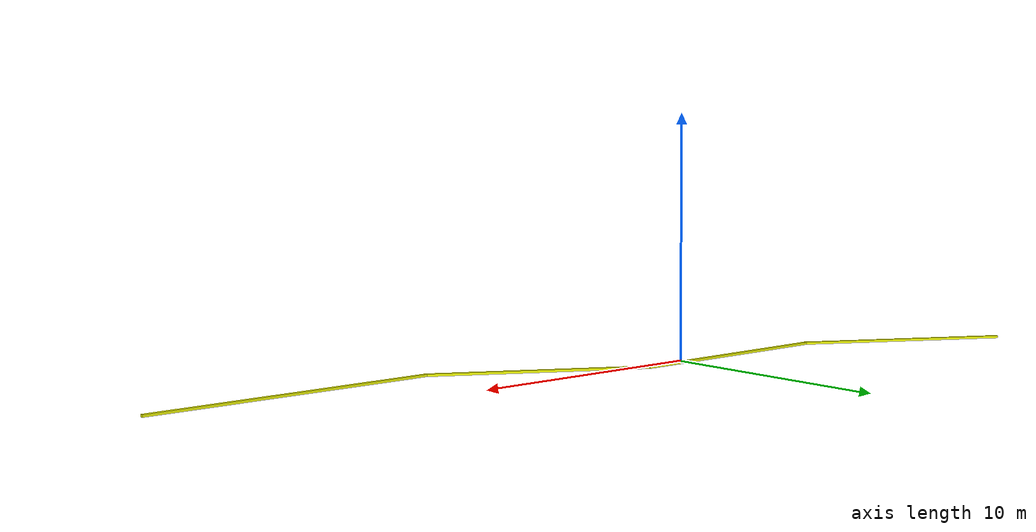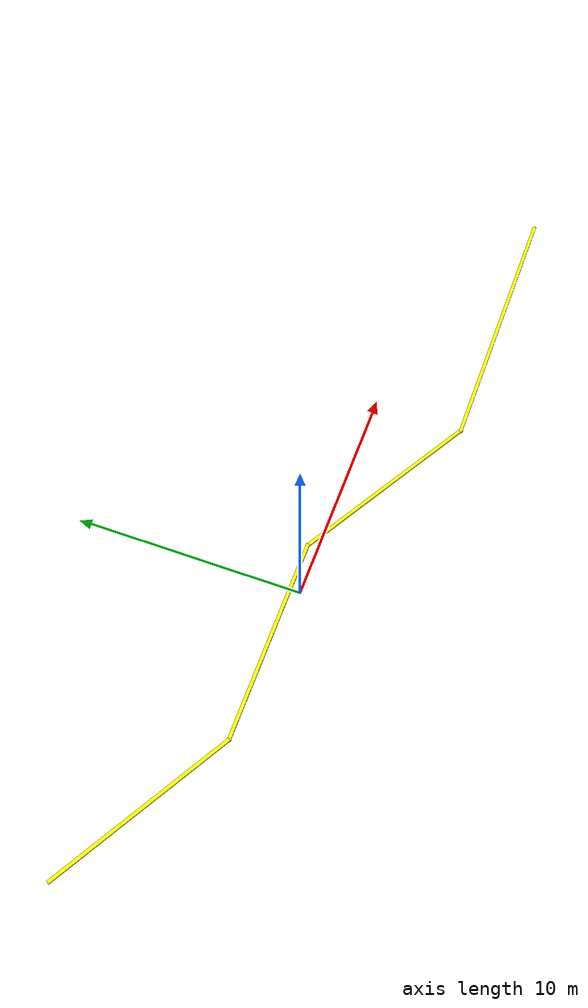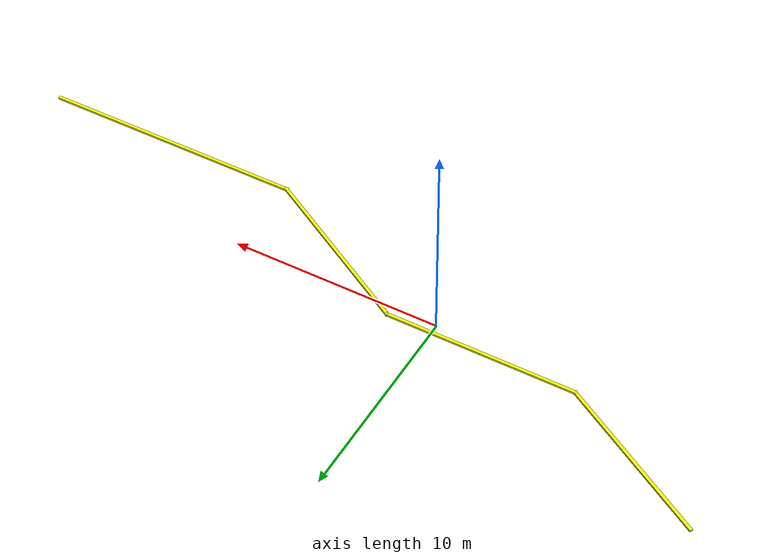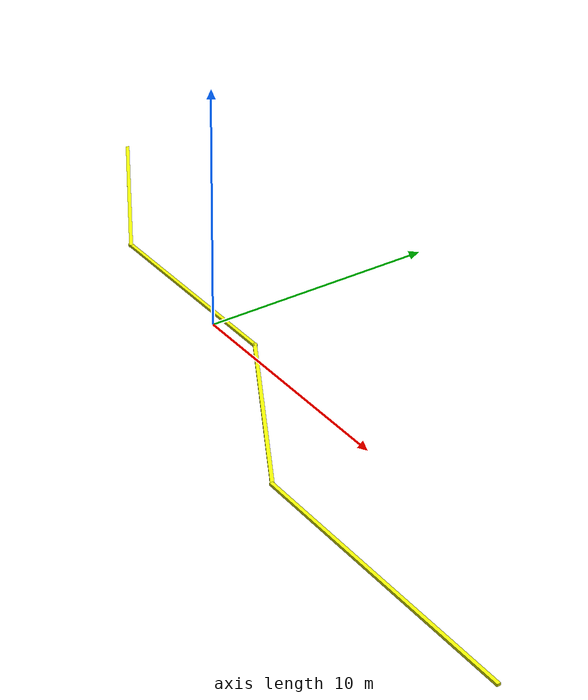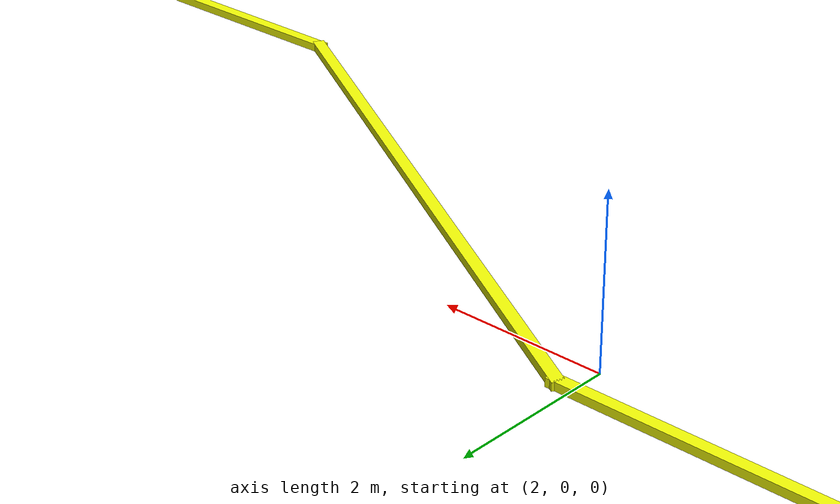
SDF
<?xml version='1.0'?>
<sdf version='1.7'>
  <model name='line3'>
    <pose>3.76931 0.405445 0 0 -0 0</pose>
    <link name='Wall_3'>
      <collision name='Wall_3_Collision'>
        <geometry>
          <box>
            <size>8.75 0.15 0.1</size>
          </box>
        </geometry>
        <pose>0 0 0.05 0 -0 0</pose>
      </collision>
      <visual name='Wall_3_Visual'>
        <pose>0 0 0.05 0 -0 0</pose>
        <geometry>
          <box>
            <size>8.75 0.15 0.1</size>
          </box>
        </geometry>
        <material>
          <script>
            <uri>file://media/materials/scripts/gazebo.material</uri>
            <name>Gazebo/Grey</name>
          </script>
          <ambient>0.945098 0.980392 0.0196078 1</ambient>
        </material>
        <meta>
          <layer>0</layer>
        </meta>
      </visual>
      <pose>-14.4183 2.21256 0 0 -0 -0.523588</pose>
    </link>
    <link name='Wall_4'>
      <collision name='Wall_4_Collision'>
        <geometry>
          <box>
            <size>9.25 0.15 0.1</size>
          </box>
        </geometry>
        <pose>0 0 0.05 0 -0 0</pose>
      </collision>
      <visual name='Wall_4_Visual'>
        <pose>0 0 0.05 0 -0 0</pose>
        <geometry>
          <box>
            <size>9.25 0.15 0.1</size>
          </box>
        </geometry>
        <material>
          <script>
            <uri>file://media/materials/scripts/gazebo.material</uri>
            <name>Gazebo/Grey</name>
          </script>
          <ambient>0.945098 0.980392 0.0196078 1</ambient>
        </material>
        <meta>
          <layer>0</layer>
        </meta>
      </visual>
      <pose>-6.14431 0.062555 0 0 -0 0</pose>
    </link>
    <link name='Wall_5'>
      <collision name='Wall_5_Collision'>
        <geometry>
          <box>
            <size>9 0.15 0.1</size>
          </box>
        </geometry>
        <pose>0 0 0.05 0 -0 0</pose>
      </collision>
      <visual name='Wall_5_Visual'>
        <pose>0 0 0.05 0 -0 0</pose>
        <geometry>
          <box>
            <size>9 0.15 0.1</size>
          </box>
        </geometry>
        <material>
          <script>
            <uri>file://media/materials/scripts/gazebo.material</uri>
            <name>Gazebo/Grey</name>
          </script>
          <ambient>0.945098 0.980392 0.0196078 1</ambient>
        </material>
        <meta>
          <layer>0</layer>
        </meta>
      </visual>
      <pose>2.23769 -2.14995 0 0 -0 -0.523617</pose>
    </link>
    <link name='Wall_6'>
      <collision name='Wall_6_Collision'>
        <geometry>
          <box>
            <size>12.25 0.15 0.1</size>
          </box>
        </geometry>
        <pose>0 0 0.05 0 -0 0</pose>
      </collision>
      <visual name='Wall_6_Visual'>
        <pose>0 0 0.05 0 -0 0</pose>
        <geometry>
          <box>
            <size>12.25 0.15 0.1</size>
          </box>
        </geometry>
        <material>
          <script>
            <uri>file://media/materials/scripts/gazebo.material</uri>
            <name>Gazebo/Grey</name>
          </script>
          <ambient>0.945098 0.980392 0.0196078 1</ambient>
        </material>
        <meta>
          <layer>0</layer>
        </meta>
      </visual>
      <pose>12.1197 -4.36245 0 0 -0 0</pose>
    </link>
    <static>1</static>
  </model>
</sdf>
